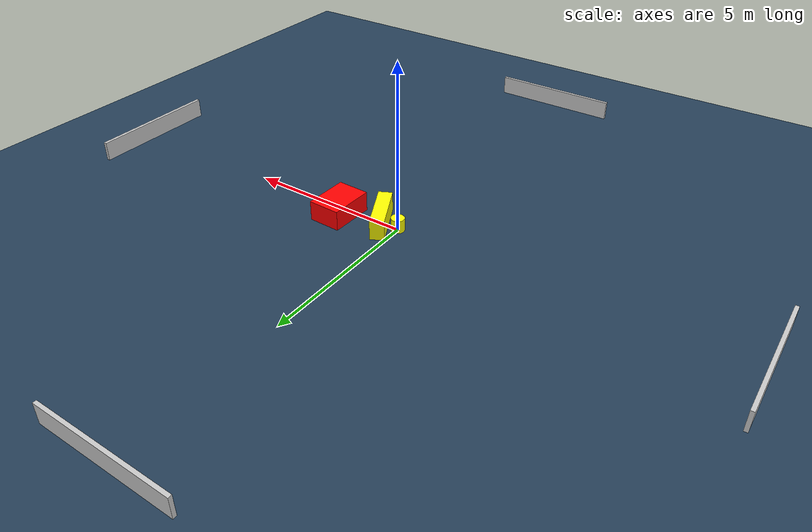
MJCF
<?xml version="1.0" ?>
<mujoco model="generated_environment">
  <option timestep="0.01" integrator="RK4" cone="elliptic"/>
  <default>
    <geom density="1"/>
  </default>
  <asset>
    <texture builtin="gradient" height="3072" name="skybox" rgb1="0.3 0.5 0.7" rgb2="0 0 0" type="skybox" width="512"/>
    <texture builtin="checker" height="300" name="groundplane" rgb1="0.2 0.3 0.4" rgb2="0.1 0.2 0.3" type="2d" width="300"/>
    <material name="groundplane" reflectance="0.2" texrepeat="5 5" texture="groundplane"/>
  </asset>
  <worldbody>
    <light dir="0 0 -1" directional="true" pos="0 0 1.5"/>
    <geom condim="3" friction="0.5 0.005 0.001" material="groundplane" name="floor" pos="0 0 0" size="0 0 0.05" type="plane"/>
    <body name="walls">
      <geom name="wall_1" condim="4" pos="-10.0 0.0 0.3" rgba="0.800000011920929 0.800000011920929 0.800000011920929 1.0" size="0.05 2.0 0.3" type="box"/>
      <geom name="wall_2" condim="4" pos="10.0 0.0 0.3" rgba="0.800000011920929 0.800000011920929 0.800000011920929 1.0" size="0.05 2.0 0.3" type="box"/>
      <geom name="wall_3" condim="4" pos="0.0 -10.0 0.3" rgba="0.800000011920929 0.800000011920929 0.800000011920929 1.0" size="2.0 0.05 0.3" type="box"/>
      <geom name="wall_4" condim="4" pos="0.0 10.0 0.3" rgba="0.800000011920929 0.800000011920929 0.800000011920929 1.0" size="2.0 0.05 0.3" type="box"/>
    </body>
    <body name="robot">
      <joint name="joint_x" type="slide" pos="0 0 0" axis="1 0 0"/>
      <joint name="joint_y" type="slide" pos="0 0 0" axis="0 1 0"/>
      <geom name="robot" type="cylinder" pos="0.0 0.0 0.2" size="0.2 0.2 0.0" mass="5.0" friction="1.0 0.005 0.0001" condim="4" rgba="1.0 1.0 0.0 1.0"/>
    </body>
    <body name="obstacle_1_movable">
      <geom name="obstacle_1_movable" condim="4" pos="0.5384179190192168 0.03623285701411401 0.3" euler="0 0 296.5168869345657" friction="0.0 0.005 0.001" rgba="1.0 1.0 0.0 1.0" size="0.7885198751442992 0.20717032029030724 0.3" type="box" mass="0.1"/>
      <joint type="free"/>
    </body>
    <body name="obstacle_2_static">
      <geom name="obstacle_2_static" condim="4" pos="1.833261072238139 0.3113620984718602 0.3" euler="0 0 88.29998368706401" friction="0.0 0.005 0.001" rgba="1.0 0.0 0.0 1.0" size="0.669156357888937 0.4852940467083378 0.3" type="box"/>
    </body>
  </worldbody>
  <actuator>
    <motor name="actuator_x" joint="joint_x" gear="1" ctrlrange="-1 1"/>
    <motor name="actuator_y" joint="joint_y" gear="1" ctrlrange="-1 1"/>
  </actuator>
</mujoco>
